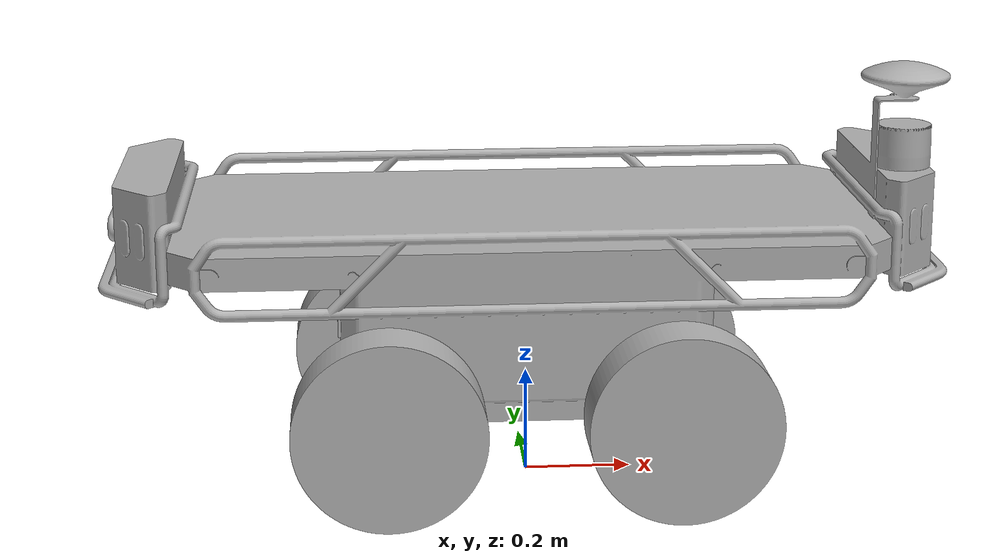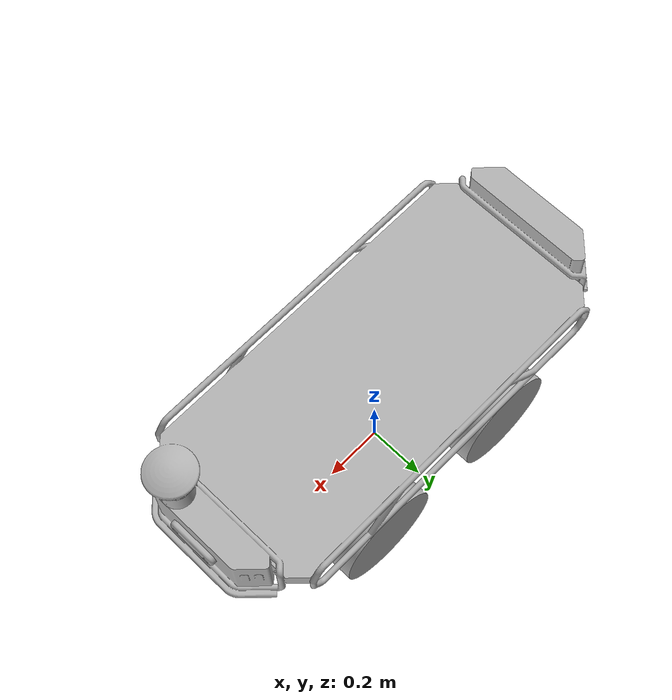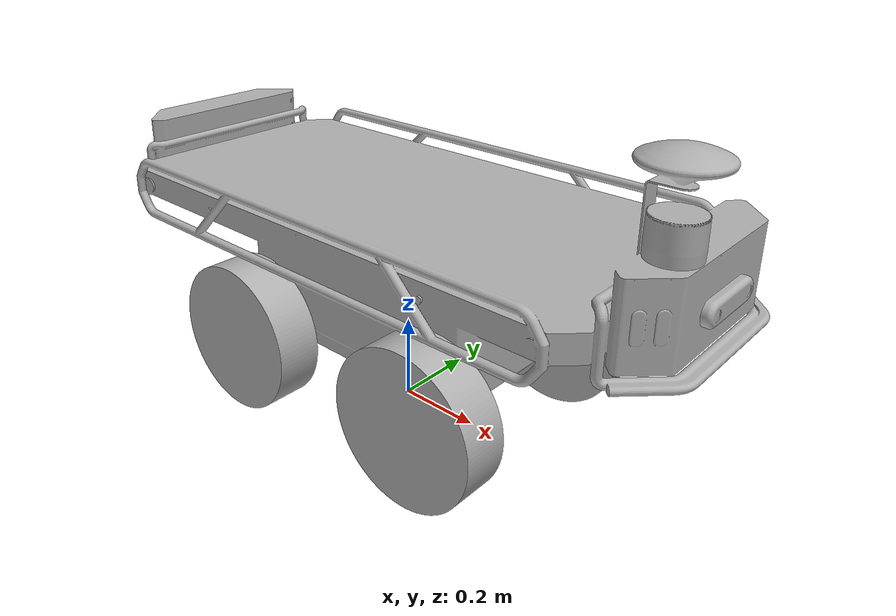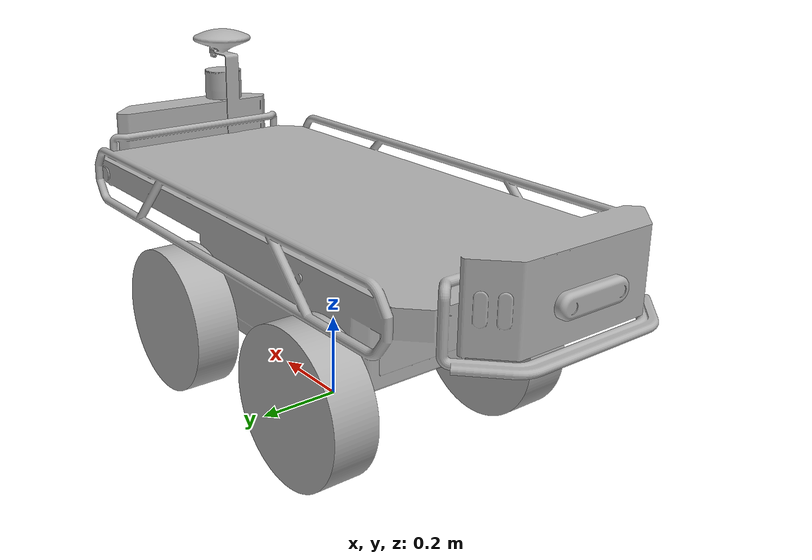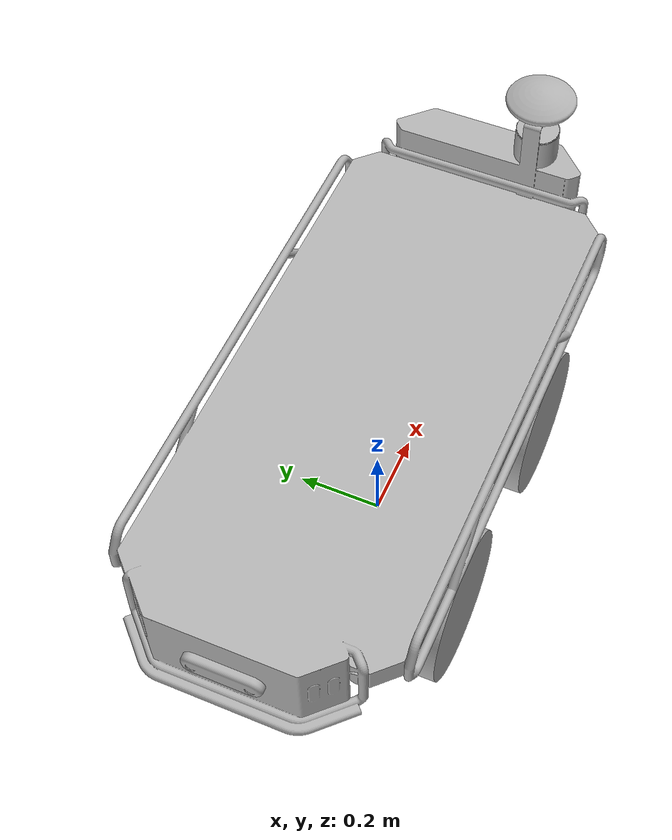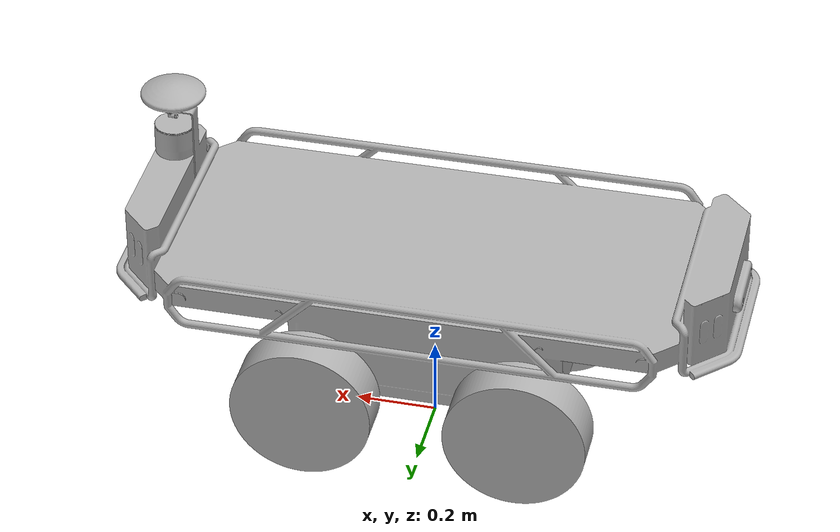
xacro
<?xml version="1.0" ?>
<robot name="antobot_ant" xmlns:xacro="http://www.ros.org/wiki/xacro">

<xacro:include filename="$(find antobot_ant_description)/urdf/materials.xacro" />
<xacro:include filename="$(find antobot_ant_description)/urdf/antobot_ant.gazebo" />
<xacro:include filename="$(find antobot_ant_description)/urdf/camera.xacro" />
<xacro:include filename="$(find antobot_ant_description)/urdf/2d-lidar.xacro" />

<link name="base_footprint"></link>

<link name="base_link">
  <inertial>
    <origin xyz="-0.0078065090363846346 5.900549531193386e-17 0.19888879025928274" rpy="0 0 0"/>
    <mass value="1239.0171749397857"/>
    <inertia ixx="46.279732" iyy="188.951914" izz="203.003734" ixy="0.0" iyz="0.0" ixz="0.036259"/>
  </inertial>
  <visual>
    <origin xyz="0 0 0" rpy="0 0 0"/>
    <geometry>
      <mesh filename="file://$(find antobot_ant_description)/meshes/base_link_R.stl" scale="0.001 0.001 0.001"/>
    </geometry>
    <material name="silver"/>
  </visual>
  <collision>
    <origin xyz="0 0 0" rpy="0 0 0"/>
    <geometry>
      <mesh filename="file://$(find antobot_ant_description)/meshes/base_link.stl" scale="0.001 0.001 0.001"/>
    </geometry>
  </collision>
</link>

<link name="wheelTR_1">
  <inertial>
    <origin xyz="0.0 -0.05351200000000009 -5.898059818321144e-17" rpy="0 0 0"/>
    <mass value="81.46481470062879"/>
    <inertia ixx="0.706366" iyy="1.257215" izz="0.706366" ixy="0.0" iyz="-0.0" ixz="-0.0"/>
  </inertial>
  <visual>
    <origin xyz="-0.265 0.21 0.02" rpy="0 0 0"/>
    <geometry>
      <mesh filename="file://$(find antobot_ant_description)/meshes/wheelTR_1R.stl" scale="0.001 0.001 0.001"/>
    </geometry>
    <material name="silver"/>
  </visual>
  <collision>
    <origin xyz="-0.265 0.21 0.02" rpy="0 0 0"/>
    <geometry>
      <mesh filename="file://$(find antobot_ant_description)/meshes/wheelTR_1.stl" scale="0.001 0.001 0.001"/>
    </geometry>
  </collision>
</link>

<link name="wheelBR_1">
  <inertial>
    <origin xyz="0.0 -0.05351200000000009 -5.898059818321144e-17" rpy="0 0 0"/>
    <mass value="81.46481470062879"/>
    <inertia ixx="0.706366" iyy="1.257215" izz="0.706366" ixy="0.0" iyz="-0.0" ixz="-0.0"/>
  </inertial>
  <visual>
    <origin xyz="0.265 0.21 0.02" rpy="0 0 0"/>
    <geometry>
      <mesh filename="file://$(find antobot_ant_description)/meshes/wheelBR_1R.stl" scale="0.001 0.001 0.001"/>
    </geometry>
    <material name="silver"/>
  </visual>
  <collision>
    <origin xyz="0.265 0.21 0.02" rpy="0 0 0"/>
    <geometry>
      <mesh filename="file://$(find antobot_ant_description)/meshes/wheelBR_1.stl" scale="0.001 0.001 0.001"/>
    </geometry>
  </collision>
</link>

<link name="wheelBL_1">
  <inertial>
    <origin xyz="0.0 0.05351200000000009 5.551115123125783e-17" rpy="0 0 0"/>
    <mass value="81.46481470062879"/>
    <inertia ixx="0.706366" iyy="1.257215" izz="0.706366" ixy="-0.0" iyz="-0.0" ixz="0.0"/>
  </inertial>
  <visual>
    <origin xyz="0.265 -0.21 0.02" rpy="0 0 0"/>
    <geometry>
      <mesh filename="file://$(find antobot_ant_description)/meshes/wheelBL_1R.stl" scale="0.001 0.001 0.001"/>
    </geometry>
    <material name="silver"/>
  </visual>
  <collision>
    <origin xyz="0.265 -0.21 0.02" rpy="0 0 0"/>
    <geometry>
      <mesh filename="file://$(find antobot_ant_description)/meshes/wheelBL_1.stl" scale="0.001 0.001 0.001"/>
    </geometry>
  </collision>
</link>

<link name="wheelTL_1">
  <inertial>
    <origin xyz="0.0 0.05351200000000009 5.551115123125783e-17" rpy="0 0 0"/>
    <mass value="81.46481470062879"/>
    <inertia ixx="0.706366" iyy="1.257215" izz="0.706366" ixy="0.0" iyz="-0.0" ixz="0.0"/>
  </inertial>
  <visual>
    <origin xyz="-0.265 -0.21 0.02" rpy="0 0 0"/>
    <geometry>
      <mesh filename="file://$(find antobot_ant_description)/meshes/wheelTL_1R.stl" scale="0.001 0.001 0.001"/>
    </geometry>
    <material name="silver"/>
  </visual>
  <collision>
    <origin xyz="-0.265 -0.21 0.02" rpy="0 0 0"/>
    <geometry>
      <mesh filename="file://$(find antobot_ant_description)/meshes/wheelTL_1.stl" scale="0.001 0.001 0.001"/>
    </geometry>
  </collision>
</link>

<link name="rear_camera_1">
  <inertial>
    <origin xyz="-0.009488207545488292 1.1333156635373597e-13 -2.2400090748941892e-07" rpy="0 0 0"/>
    <mass value="1.2113692897146735"/>
    <inertia ixx="0.002916" iyy="0.000261" izz="0.00273" ixy="0.0" iyz="-0.0" ixz="0.0"/>
  </inertial>
  <visual>
    <origin xyz="0.74355 -0.0 -0.311894" rpy="0 0 0"/>
    <geometry>
      <mesh filename="file://$(find antobot_ant_description)/meshes/rear_camera_1.stl" scale="0.001 0.001 0.001"/>
    </geometry>
    <material name="silver"/>
  </visual>
  <collision>
    <origin xyz="0.74355 -0.0 -0.311894" rpy="0 0 0"/>
    <geometry>
      <mesh filename="file://$(find antobot_ant_description)/meshes/rear_camera_1.stl" scale="0.001 0.001 0.001"/>
    </geometry>
  </collision>
</link>

<link name="front_camera_1">
  <inertial>
    <origin xyz="0.009489069408963546 -1.1333156635373597e-13 -2.820043587536958e-07" rpy="0 0 0"/>
    <mass value="1.2113692897146735"/>
    <inertia ixx="0.002916" iyy="0.000261" izz="0.00273" ixy="0.0" iyz="0.0" ixz="0.0"/>
  </inertial>
  <visual>
    <origin xyz="-0.730549 -0.0 -0.313081" rpy="0 0 0"/>
    <geometry>
      <mesh filename="file://$(find antobot_ant_description)/meshes/front_camera_1.stl" scale="0.001 0.001 0.001"/>
    </geometry>
    <material name="silver"/>
  </visual>
  <collision>
    <origin xyz="-0.730549 -0.0 -0.313081" rpy="0 0 0"/>
    <geometry>
      <mesh filename="file://$(find antobot_ant_description)/meshes/front_camera_1.stl" scale="0.001 0.001 0.001"/>
    </geometry>
  </collision>
</link>

<link name="Leishen_C16_Bottom_Connector_1">
  <inertial>
    <origin xyz="0.00033107082234540286 -2.3270637740629985e-05 0.032575610808614874" rpy="0 0 0"/>
    <mass value="0.8957309729860499"/>
    <inertia ixx="0.001593" iyy="0.001616" izz="0.001786" ixy="-1e-06" iyz="-1e-06" ixz="1.6e-05"/>
  </inertial>
  <visual>
    <origin xyz="-0.680776 0.108 -0.412579" rpy="0 0 0"/>
    <geometry>
      <mesh filename="file://$(find antobot_ant_description)/meshes/Leishen_C16_Bottom_Connector_1.stl" scale="0.001 0.001 0.001"/>
    </geometry>
    <material name="silver"/>
  </visual>
  <collision>
    <origin xyz="-0.680776 0.108 -0.412579" rpy="0 0 0"/>
    <geometry>
      <mesh filename="file://$(find antobot_ant_description)/meshes/Leishen_C16_Bottom_Connector_1.stl" scale="0.001 0.001 0.001"/>
    </geometry>
  </collision>
</link>

<joint name="base_footprint_joint" type="fixed">
  <origin xyz="0 0 0.2" rpy="0 0 0"/>
  <parent link="base_footprint"/>
  <child link="base_link"/>
</joint>

<joint name="wheelTR_joint" type="continuous">
  <origin xyz="0.265 -0.21 -0.02" rpy="0 0 0"/>
  <parent link="base_link"/>
  <child link="wheelTR_1"/>
  <axis xyz="0.0 1.0 0.0"/>
  <mimic joint="wheelBR_joint" multiplier="1.0" offset="0.0"/>
</joint>

<joint name="wheelBR_joint" type="continuous">
  <origin xyz="-0.265 -0.21 -0.02" rpy="0 0 0"/>
  <parent link="base_link"/>
  <child link="wheelBR_1"/>
  <axis xyz="0.0 1.0 0.0"/>
</joint>

<joint name="wheelBL_joint" type="continuous">
  <origin xyz="-0.265 0.21 -0.02" rpy="0 0 0"/>
  <parent link="base_link"/>
  <child link="wheelBL_1"/>
  <axis xyz="0.0 1.0 0.0"/>
</joint>

<joint name="wheelTL_joint" type="continuous">
  <origin xyz="0.265 0.21 -0.02" rpy="0 0 0"/>
  <parent link="base_link"/>
  <child link="wheelTL_1"/>
  <axis xyz="0.0 1.0 0.0"/>
  <mimic joint="wheelBL_joint" multiplier="1.0" offset="0.0"/>
</joint>

<joint name="rear_camera_joint" type="fixed">
  <origin xyz="-0.74355 0.0 0.311894" rpy="0 0 0"/>
  <parent link="base_link"/>
  <child link="rear_camera_1"/>
</joint>

<joint name="fromt_camera_joint" type="fixed">
  <origin xyz="0.730549 0.0 0.313081" rpy="0 0 0"/>
  <parent link="base_link"/>
  <child link="front_camera_1"/>
</joint>

<joint name="leishen_l16_joint" type="fixed">
  <origin xyz="0.680776 -0.108 0.412579" rpy="0 0 0"/>
  <parent link="base_link"/>
  <child link="Leishen_C16_Bottom_Connector_1"/>
</joint>

</robot>

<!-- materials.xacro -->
<robot name="antobot_ant" xmlns:xacro="http://www.ros.org/wiki/xacro" >

<material name="silver">
  <color rgba="0.700 0.700 0.700 1.000"/>
</material>

</robot>

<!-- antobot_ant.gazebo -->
<robot name="antobot_ant" xmlns:xacro="http://www.ros.org/wiki/xacro" >

<xacro:property name="body_color" value="Gazebo/Silver" />

<gazebo>
  <plugin name="rear_diff_drive" filename="libgazebo_ros_diff_drive.so">
    <left_joint>wheelBL_joint</left_joint>
    <right_joint>wheelBR_joint</right_joint>
    <wheel_separation>0.6</wheel_separation>
    <wheel_diameter>0.305</wheel_diameter>
    <max_wheel_torque>200</max_wheel_torque>
    <max_wheel_acceleration>10.0</max_wheel_acceleration>
    <odometry_frame>odom</odometry_frame>
    <robot_base_frame>base_footprint</robot_base_frame>
    <publish_odom>true</publish_odom>
    <publish_odom_tf>true</publish_odom_tf>
    <publish_wheel_tf>true</publish_wheel_tf>
    <cmd_vel_topic>rear_cmd_vel</cmd_vel_topic>
  </plugin>

  <plugin name="front_diff_drive" filename="libgazebo_ros_diff_drive.so">
    <left_joint>wheelTL_joint</left_joint>
    <right_joint>wheelTR_joint</right_joint>
    <wheel_separation>0.6</wheel_separation>
    <wheel_diameter>0.305</wheel_diameter>
    <max_wheel_torque>200</max_wheel_torque>
    <max_wheel_acceleration>10.0</max_wheel_acceleration>
    <odometry_frame>odom_front</odometry_frame>
    <robot_base_frame>base_footprint</robot_base_frame>
    <publish_odom>false</publish_odom> <!-- avoid duplicate odometry -->
    <publish_odom_tf>false</publish_odom_tf>
    <publish_wheel_tf>false</publish_wheel_tf>
    <cmd_vel_topic>rear_cmd_vel</cmd_vel_topic> <!-- same topic to sync with rear -->
  </plugin>
</gazebo>

<gazebo reference="base_link">
  <material>${body_color}</material>
  <mu1>0.2</mu1>
  <mu2>0.2</mu2>
  <self_collide>false</self_collide>
  <gravity>false</gravity>
</gazebo>

<gazebo reference="wheelTR_1">
  <material>${body_color}</material>
  <mu1>0.5</mu1>
  <mu2>0.5</mu2>
  <self_collide>false</self_collide>
</gazebo>

<gazebo reference="wheelBR_1">
  <material>${body_color}</material>
  <mu1>0.5</mu1>
  <mu2>0.5</mu2>
  <self_collide>false</self_collide>
</gazebo>

<gazebo reference="wheelBL_1">
  <material>${body_color}</material>
  <mu1>0.5</mu1>
  <mu2>0.5</mu2>
  <self_collide>false</self_collide>
</gazebo>

<gazebo reference="wheelTL_1">
  <material>${body_color}</material>
  <mu1>0.5</mu1>
  <mu2>0.5</mu2>
  <self_collide>false</self_collide>
</gazebo>

<gazebo reference="rear_camera_1">
  <material>${body_color}</material>
  <mu1>0.2</mu1>
  <mu2>0.2</mu2>
  <self_collide>false</self_collide>
</gazebo>

<gazebo reference="front_camera_1">
  <material>${body_color}</material>
  <mu1>0.2</mu1>
  <mu2>0.2</mu2>
  <self_collide>false</self_collide>
</gazebo>

<gazebo reference="Leishen_C16_Bottom_Connector_1">
  <material>${body_color}</material>
  <mu1>0.2</mu1>
  <mu2>0.2</mu2>
  <self_collide>false</self_collide>
</gazebo>

</robot>

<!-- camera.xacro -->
<robot xmlns:xacro="http://www.ros.org/wiki/xacro" >

    <!-- FRONT CAMERA -->

    <joint name="front_camera_joint_main" type="fixed">
        <parent link="front_camera_1"/>
        <child link="front_camera_link"/>
        <origin xyz="0.02 0 0" rpy="0 0 0"/>
    </joint>

    <link name="front_camera_link"/>

    <joint name="front_camera_optical_joint" type="fixed">
        <parent link="front_camera_link"/>
        <child link="front_camera_link_optical"/>
        <origin xyz="0 0 0" rpy="${-pi/2} 0 ${-pi/2}"/>
    </joint>

    <link name="front_camera_link_optical"/>

    <gazebo reference="front_camera_link">
        <sensor name="front_camera" type="camera">
            <pose>0 0 0 0 0 0</pose>
            <visualize>true</visualize>
            <update_rate>10</update_rate>
            <camera>
                <horizontal_fov>1.089</horizontal_fov>
                <image>
                    <format>R8G8B8</format>
                    <width>640</width>
                    <height>480</height>
                </image>
                <clip>
                    <near>0.05</near>
                    <far>8.0</far>
                </clip>
            </camera>
            <plugin name="front_camera_controller" filename="libgazebo_ros_camera.so">
                <frame_name>front_camera_link_optical</frame_name>
            </plugin>
        </sensor>
    </gazebo>

    <!-- REAR CAMERA -->

    <joint name="rear_camera_joint_main" type="fixed">
        <parent link="rear_camera_1"/>
        <child link="rear_camera_link"/>
        <origin xyz="-0.02 0 0" rpy="0 0 ${pi}"/>
    </joint>

    <link name="rear_camera_link"/>

    <joint name="rear_camera_optical_joint" type="fixed">
        <parent link="rear_camera_link"/>
        <child link="rear_camera_link_optical"/>
        <origin xyz="0 0 0" rpy="${-pi/2} 0 ${-pi/2}"/>
    </joint>

    <link name="rear_camera_link_optical"/>

    <gazebo reference="rear_camera_link">
        <sensor name="rear_camera" type="camera">
            <pose>0 0 0 0 0 0</pose>
            <visualize>true</visualize>
            <update_rate>10</update_rate>
            <camera>
                <horizontal_fov>1.089</horizontal_fov>
                <image>
                    <format>R8G8B8</format>
                    <width>640</width>
                    <height>480</height>
                </image>
                <clip>
                    <near>0.05</near>
                    <far>8.0</far>
                </clip>
            </camera>
            <plugin name="rear_camera_controller" filename="libgazebo_ros_camera.so">
                <frame_name>rear_camera_link_optical</frame_name>
            </plugin>
        </sensor>
    </gazebo>

</robot>

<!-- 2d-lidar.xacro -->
<robot xmlns:xacro="http://www.ros.org/wiki/xacro">

  <joint name="laser_joint" type="fixed">
    <parent link="Leishen_C16_Bottom_Connector_1"/>
    <child link="laser_frame"/>
    <origin xyz="0 0 0.03842" rpy="0 0 0"/>
  </joint>

  <link name="laser_frame"/>

  <gazebo reference="laser_frame">
    <material>Gazebo/Red</material>

    <sensor name="leishen_2d_lidar_sim" type="ray">
      <pose>0 0 0 0 0 0</pose>
      <visualize>false</visualize>
      <update_rate>10</update_rate>
      <ray>
        <scan>
          <horizontal>
            <!-- 20° = 0.349 rad -->
            <samples>320</samples> <!-- Optional: Adjust to your desired resolution -->
            <min_angle>-2.82</min_angle>       <!-- -20 degrees -->
            <max_angle>2.82</max_angle>     <!-- +20 degrees -->
          </horizontal>
          <vertical>
            <samples>1</samples>
            <min_angle>0.0</min_angle>
            <max_angle>0.0</max_angle>
          </vertical>
        </scan>
        <range>
          <min>0.1</min>
          <max>30.0</max> <!-- Typical for 2D LiDAR -->
        </range>
      </ray>
      <plugin name="leishen_2d_lidar_points" filename="libgazebo_ros_ray_sensor.so">
        <ros>
          <argument>~/out:=scan</argument>
        </ros>
        <output_type>sensor_msgs/LaserScan</output_type>
        <frame_name>laser_frame</frame_name>
      </plugin>
    </sensor>
  </gazebo>

</robot>
